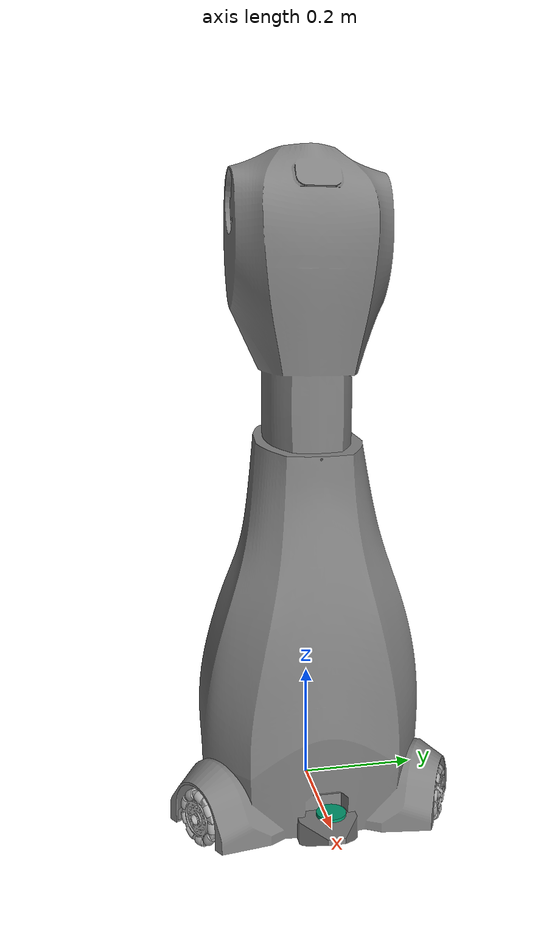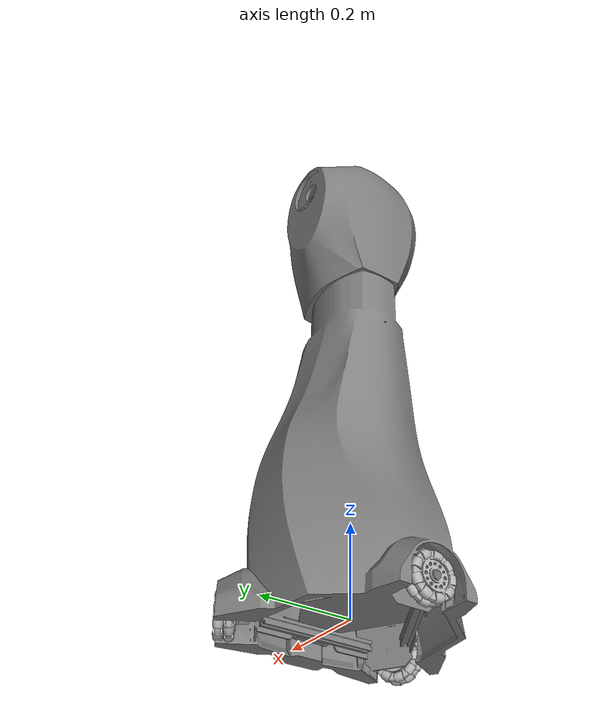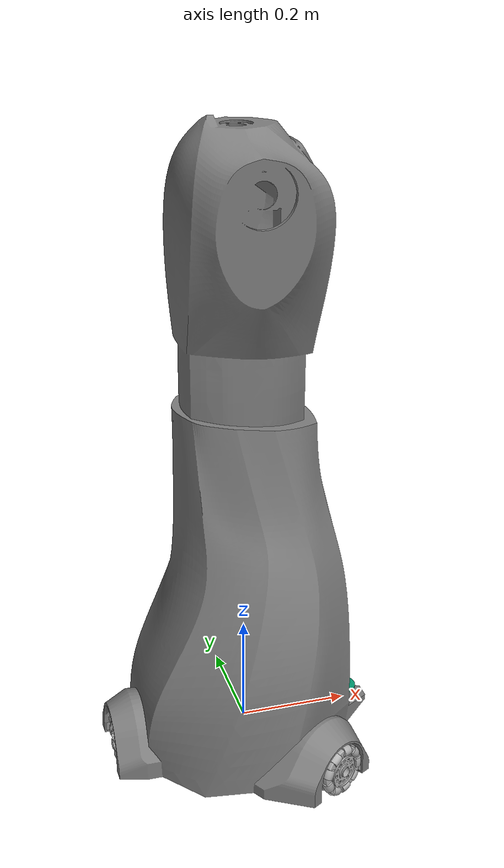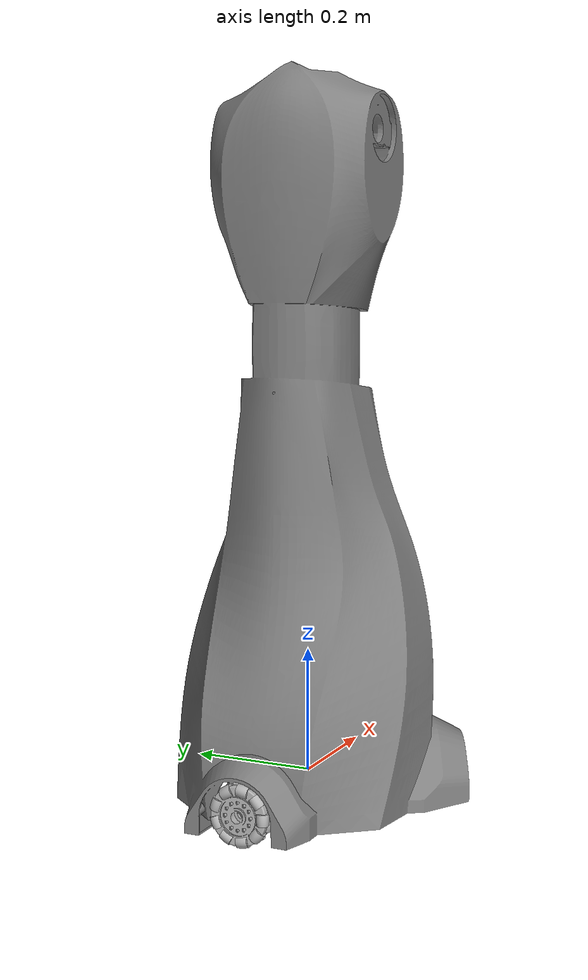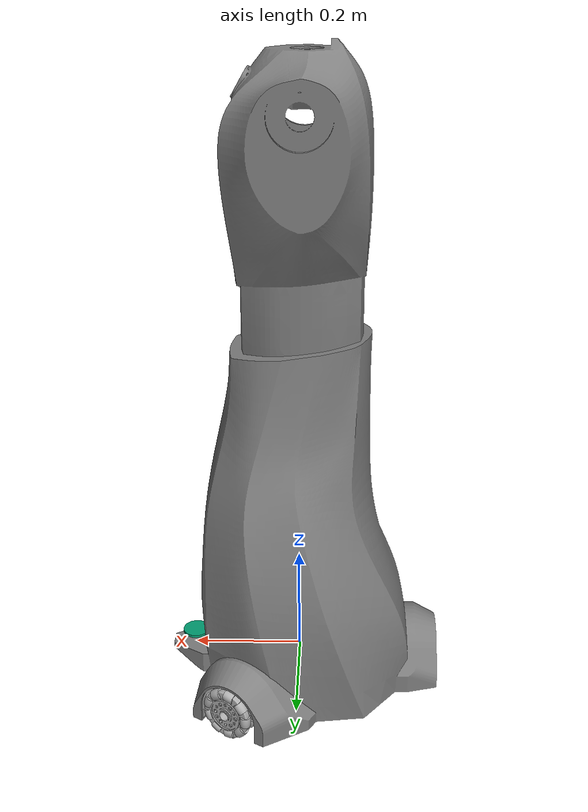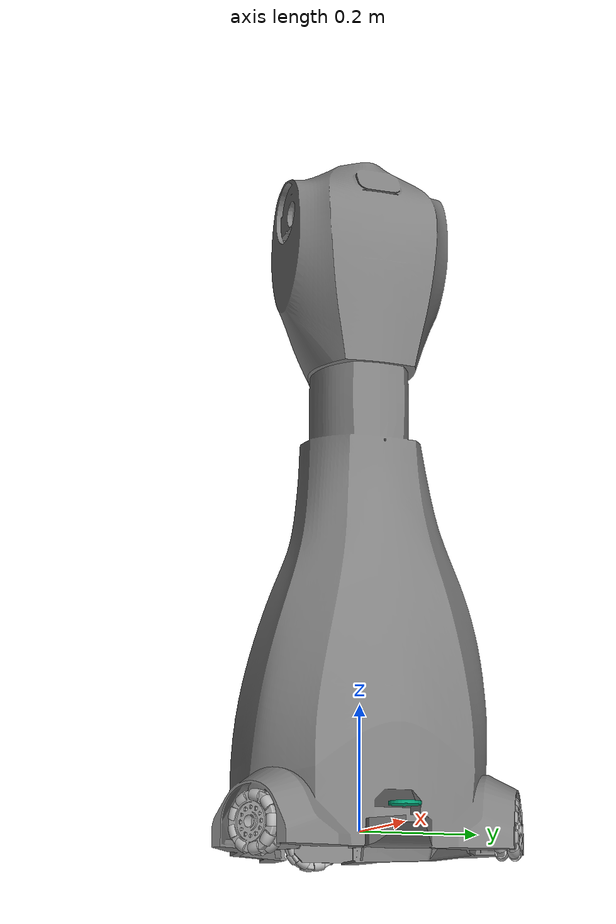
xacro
<?xml version="1.0" ?>
<robot name="origin" xmlns:xacro="http://www.ros.org/wiki/xacro">

  <xacro:property name="PI" value="3.1415926535897931"/>

  <xacro:property name="chassis_innere_radius" value="0.18773"/>
  <xacro:property name="chassis_outer_radius" value="0.2593"/>
  <xacro:property name="chassis_origin_height" value="0.0539"/>

  <xacro:property name="wheel_radius" value="0.023" />
  <xacro:property name="wheel_height" value="0.067" />

  <xacro:property name="rim_height" value="0.0465" />
  <xacro:property name="rim_height_offset" value="0.01" />
  <xacro:property name="rim_radius" value="0.03885" />

  <xacro:property name="roller_height" value="0.0185" />
  <xacro:property name="roller_radius" value="0.0099315" />
  <xacro:property name="roller_mass" value="0.005349864886406462" />

  <xacro:include filename="$(find origin_description)/urdf/materials.xacro" />
  <xacro:include filename="$(find origin_description)/urdf/wheel.urdf.xacro" />
  <xacro:include filename="$(find origin_description)/urdf/origin.base.urdf.xacro" />
  <xacro:include filename="$(find origin_description)/urdf/origin_macro.ros2_control.xacro" />

  <xacro:origin_base/>

</robot>

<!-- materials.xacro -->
<robot name="origin" xmlns:xacro="http://www.ros.org/wiki/xacro" >

<material name="silver">
  <color rgba="0.700 0.700 0.700 1.000"/>
</material>

<material name="grey">
  <color rgba="0.5 0.5 0.5 1.000"/>
</material>

<material name="matte_black">
  <color rgba="0.1568 0.1568 0.1686 1.000"/>
</material>

<material name="shiny_white">
  <color rgba="1.0 1.0 1.0 1.0"/>
</material>

</robot>

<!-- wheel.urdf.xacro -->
<robot xmlns:xacro="http://www.ros.org/wiki/xacro">

	<xacro:macro name="inertial_cylinder" params="mass length radius *origin">
        <inertial>
            <xacro:insert_block name="origin"/>
            <mass value="${mass}" />
            <inertia
                ixx="${(1/12) * mass * (3*radius*radius + length*length)}"
                ixy="0.0"
                ixz="0.0"
                iyy="${(1/12) * mass * (3*radius*radius + length*length)}"
                iyz="0.0"
                izz="${(1/2) * mass * (radius*radius)}" />
            </inertial>
    </xacro:macro>

    <xacro:macro name="insert_roller" params="parent reflect theta suffix wheel">
        <joint name="roller_${wheel}_${suffix}_joint" type="continuous">
            <origin xyz="${rim_radius*cos(theta)} ${rim_radius*sin(theta)} ${reflect*rim_height_offset+rim_height}" rpy="0.0 ${PI/2} ${theta-PI/2}"/>
            <parent link="${parent}"/>
            <child link="roller_${wheel}_${suffix}_link"/>
            <axis xyz="0.0 0.0 1.0"/>
            <dynamics friction="0.1"/>
        </joint>

        <link name="roller_${wheel}_${suffix}_link">
            <visual>
                <origin xyz="0.0 0.0 0.0" rpy="0.0 0.0 0.0"/>
                <geometry>
                    <mesh filename="file://$(find origin_description)/meshes/roller.stl" scale="0.001 0.001 0.001" />
                </geometry>
                <material name="silver"/>
            </visual>

            <collision>
                <origin xyz="0.0 0.0 0.0" rpy="0.0 0.0 0.0"/>
                <geometry>
                    <mesh filename="file://$(find origin_description)/meshes/roller.stl" scale="0.001 0.001 0.001" />
                </geometry>
            </collision>

            <inertial>
                <origin xyz="0.0 0.0 0.0" rpy="0.0 0.0 0.0"/>
                <mass value="0.003"/>
                <inertia ixx="5.3e-8"
                         ixy="0.0"
                         ixz="0.0"
                         iyy="8e-8"
                         iyz="0.0"
                         izz="8e-8"/>
            </inertial>

        </link>
        <gazebo reference="roller_${wheel}_${suffix}_link">
            <material>Gazebo/Green</material>
            <fdir1>1 0 0"</fdir1>
            <mu1>0.2</mu1>
            <mu2>0.1</mu2>
            <minDepth>0.001</minDepth>
        </gazebo>
    </xacro:macro>

	<xacro:macro name="wheel" params="parent suffix theta">
        <joint name="wheel_${suffix}_joint" type="continuous">
            <origin xyz="${chassis_innere_radius*cos(theta)} ${chassis_innere_radius*sin(theta)} 0.0" rpy="0.0 ${PI/2} ${theta}"/>
            <parent link="${parent}"/>
            <child link="wheel_${suffix}_link"/>
            <axis xyz="0.0 0.0 1.0"/>
        </joint>

        <link name="wheel_${suffix}_link">
            <visual>
                <origin xyz="0.0 0.0 0.0" rpy="0.0 0.0 0.0"/>
                <geometry>
                    <mesh filename="file://$(find origin_description)/meshes/rim.stl" scale="0.001 0.001 0.001"/>
                </geometry>
                <material name="silver"/>
            </visual>

            <collision>
                <origin xyz="0.0 0.0 0.0" rpy="0.0 0.0 0.0"/>
                <geometry>
                    <mesh filename="file://$(find origin_description)/meshes/rim.stl" scale="0.001 0.001 0.001"/>
                </geometry>
            </collision>

            <inertial>
                <origin xyz="0.0 0.0 0.0" rpy="0.0 0.0 0.0"/>
                <mass value="0.3495383475867773"/>
    			<inertia ixx="0.000247" iyy="0.00022" izz="0.000207" ixy="2.3e-05" iyz="0.0" ixz="1e-06"/>
            </inertial>
        </link>

        <xacro:insert_roller parent="wheel_${suffix}_link" reflect="1.0" theta="${PI/18}" suffix="a1" wheel="${suffix}"/>
        <xacro:insert_roller parent="wheel_${suffix}_link" reflect="1.0" theta="${2*PI/9+PI/18}" suffix="a2" wheel="${suffix}"/>
        <xacro:insert_roller parent="wheel_${suffix}_link" reflect="1.0" theta="${4*PI/9+PI/18}" suffix="a3" wheel="${suffix}"/>
        <xacro:insert_roller parent="wheel_${suffix}_link" reflect="1.0" theta="${2*PI/3+PI/18}" suffix="a4" wheel="${suffix}"/>
        <xacro:insert_roller parent="wheel_${suffix}_link" reflect="1.0" theta="${8*PI/9+PI/18}" suffix="a5" wheel="${suffix}"/>
        <xacro:insert_roller parent="wheel_${suffix}_link" reflect="1.0" theta="${10*PI/9+PI/18}" suffix="a6" wheel="${suffix}"/>
        <xacro:insert_roller parent="wheel_${suffix}_link" reflect="1.0" theta="${4*PI/3+PI/18}" suffix="a7" wheel="${suffix}"/>
        <xacro:insert_roller parent="wheel_${suffix}_link" reflect="1.0" theta="${14*PI/9+PI/18}" suffix="a8" wheel="${suffix}"/>
        <xacro:insert_roller parent="wheel_${suffix}_link" reflect="1.0" theta="${16*PI/9+PI/18}" suffix="a9" wheel="${suffix}"/>

        <xacro:insert_roller parent="wheel_${suffix}_link" reflect="-1.0" theta="${17*PI/9+PI/18}" suffix="b1" wheel="${suffix}"/>
        <xacro:insert_roller parent="wheel_${suffix}_link" reflect="-1.0" theta="${PI/3+PI/18}" suffix="b2" wheel="${suffix}"/>
        <xacro:insert_roller parent="wheel_${suffix}_link" reflect="-1.0" theta="${5*PI/9+PI/18}" suffix="b3" wheel="${suffix}"/>
        <xacro:insert_roller parent="wheel_${suffix}_link" reflect="-1.0" theta="${7*PI/9+PI/18}" suffix="b4" wheel="${suffix}"/>
        <xacro:insert_roller parent="wheel_${suffix}_link" reflect="-1.0" theta="${PI+PI/18}" suffix="b5" wheel="${suffix}"/>
        <xacro:insert_roller parent="wheel_${suffix}_link" reflect="-1.0" theta="${11*PI/9+PI/18}" suffix="b6" wheel="${suffix}"/>
        <xacro:insert_roller parent="wheel_${suffix}_link" reflect="-1.0" theta="${13*PI/9+PI/18}" suffix="b7" wheel="${suffix}"/>
        <xacro:insert_roller parent="wheel_${suffix}_link" reflect="-1.0" theta="${5*PI/3+PI/18}" suffix="b8" wheel="${suffix}"/>
        <xacro:insert_roller parent="wheel_${suffix}_link" reflect="-1.0" theta="${PI/9+PI/18}" suffix="b9" wheel="${suffix}"/>

    </xacro:macro>

</robot>

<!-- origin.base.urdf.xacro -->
<robot xmlns:xacro="http://www.ros.org/wiki/xacro">
  <xacro:macro name="origin_base">

    <link name="base_link">
      <inertial>
        <origin xyz="0.0 0.0 ${chassis_origin_height}" rpy="0 0 0"/>
        <mass value="19.33964423077755"/>
        <inertia ixx="2.711261" iyy="2.683094" izz="0.388745" ixy="-0.0" iyz="-0.031041" ixz="2.9e-05"/>
      </inertial>
      <visual>
        <origin xyz="0 0 0" rpy="0 0 0"/>
        <geometry>
          <mesh filename="package://origin_hardware/description/meshes/base_link.stl" scale="0.001 0.001 0.001"/>
        </geometry>
        <material name="grey"/>
      </visual>
      <collision>
        <origin xyz="0 0 0" rpy="0 0 0"/>
        <geometry>
          <mesh filename="package://origin_hardware/description/meshes/base_link.stl" scale="0.001 0.001 0.001"/>
        </geometry>
      </collision>
    </link>

    <joint name="imu_joint" type="fixed">
      <parent link="base_link"/>
      <child link="imu_link"/>
      <origin xyz="0 0 0.05"/>
    </joint>

    <link name="imu_link">
      <visual>
        <geometry>
          <box size="0.025 0.025 0.025"/>
        </geometry>
      </visual>

      <collision>
        <geometry>
          <box size="0.025 0.025 0.025"/>
        </geometry>
      </collision>

      <inertia ixx="0.001"  ixy="0"  ixz="0" iyy="0.001" iyz="0" izz="0.001" />
    </link>

    <joint name="lidar_joint" type="fixed">
      <parent link="base_link"/>
      <child link="lidar_link"/>
      <origin xyz="0.2 0 0.027" rpy="0 0 0"/>
    </joint>

    <link name="lidar_link">
      <inertial>
        <origin xyz="0 0 0" rpy="0 0 0"/>
        <mass value="0.125"/>
        <inertia ixx="0.001"  ixy="0"  ixz="0" iyy="0.001" iyz="0" izz="0.001" />
      </inertial>

      <collision>
        <origin xyz="0 0 0" rpy="0 0 0"/>
        <geometry>
          <cylinder radius="0.0508" length="0.055"/>
        </geometry>
      </collision>

      <visual>
        <origin xyz="0 0 0" rpy="0 0 0"/>
        <geometry>
          <cylinder radius="0.025" length="0.005"/>
        </geometry>
      </visual>
    </link>

    <xacro:wheel parent="base_link" suffix="1" theta="${PI/3}"/>
    <xacro:wheel parent="base_link" suffix="2" theta="${-PI/3}"/>
    <xacro:wheel parent="base_link" suffix="3" theta="${PI}"/>

  </xacro:macro>
</robot>
